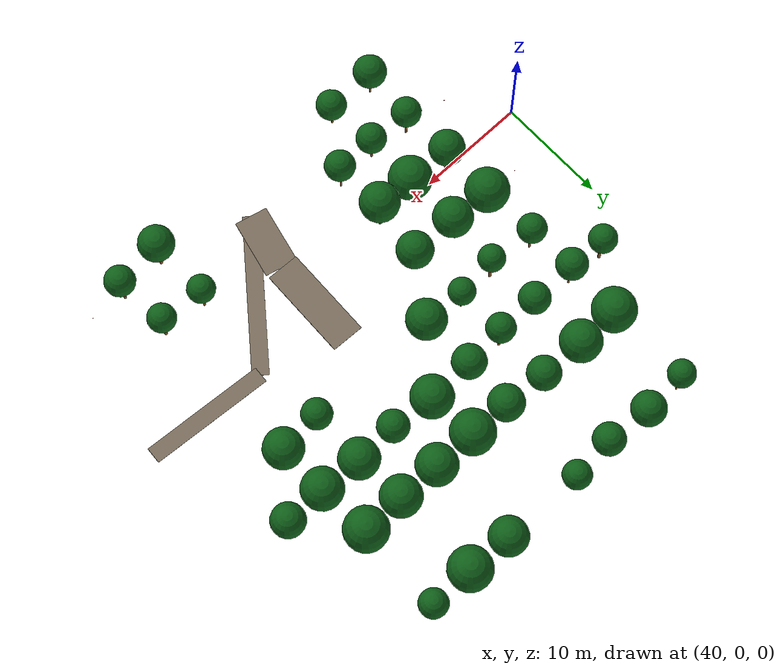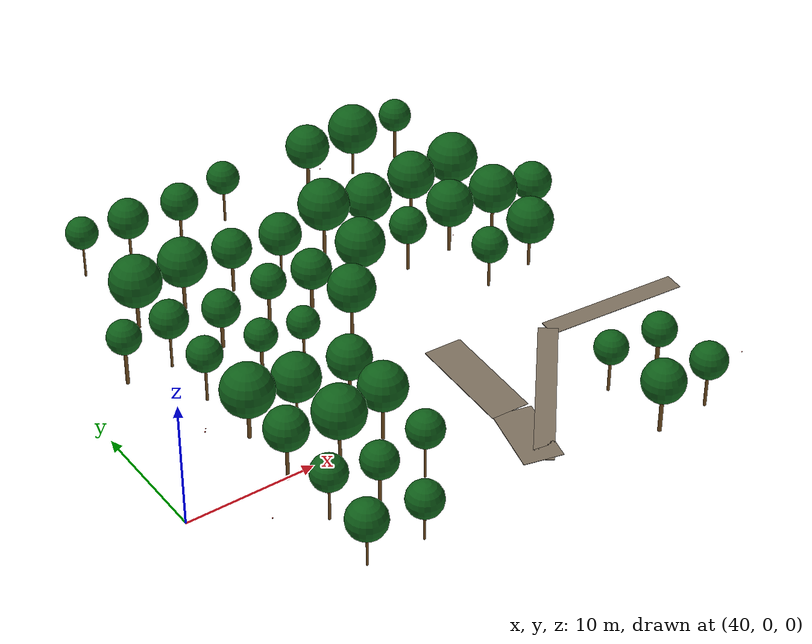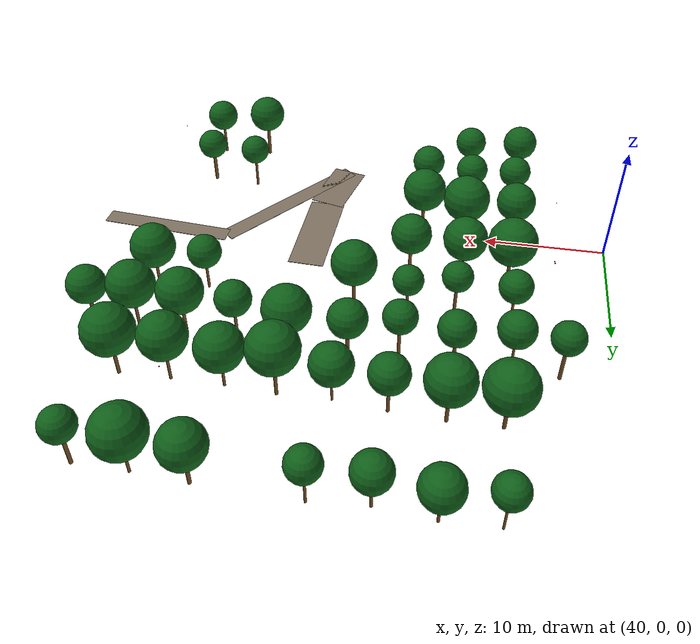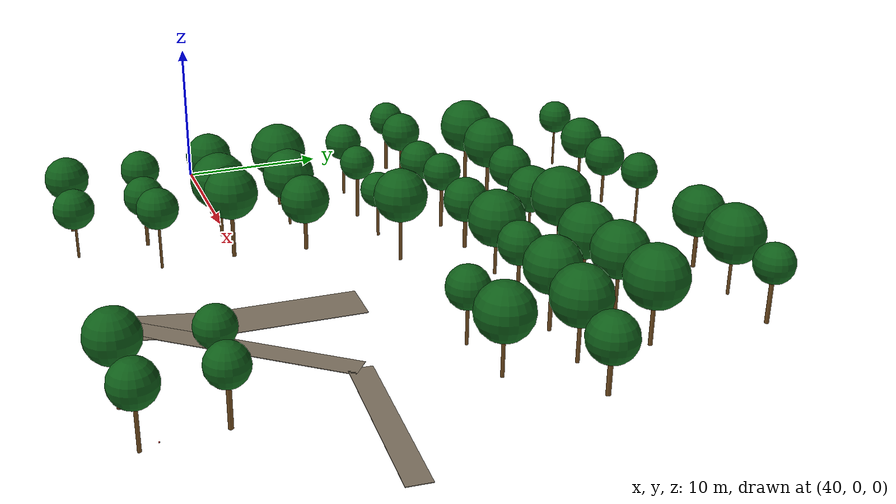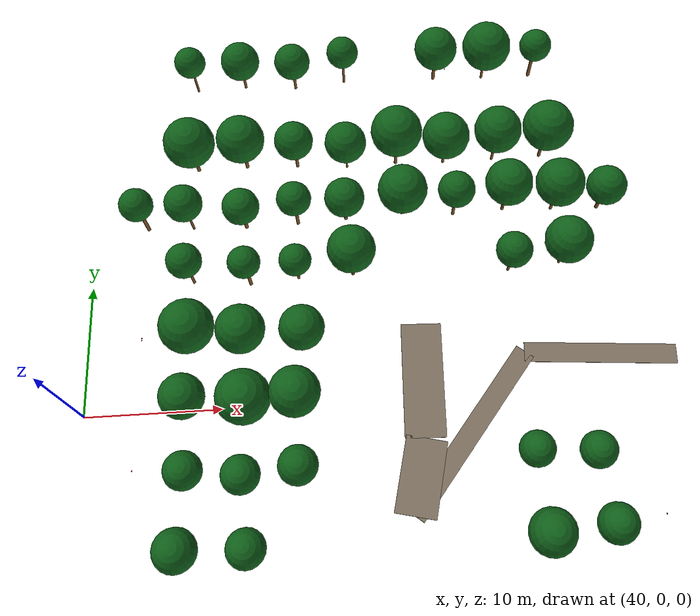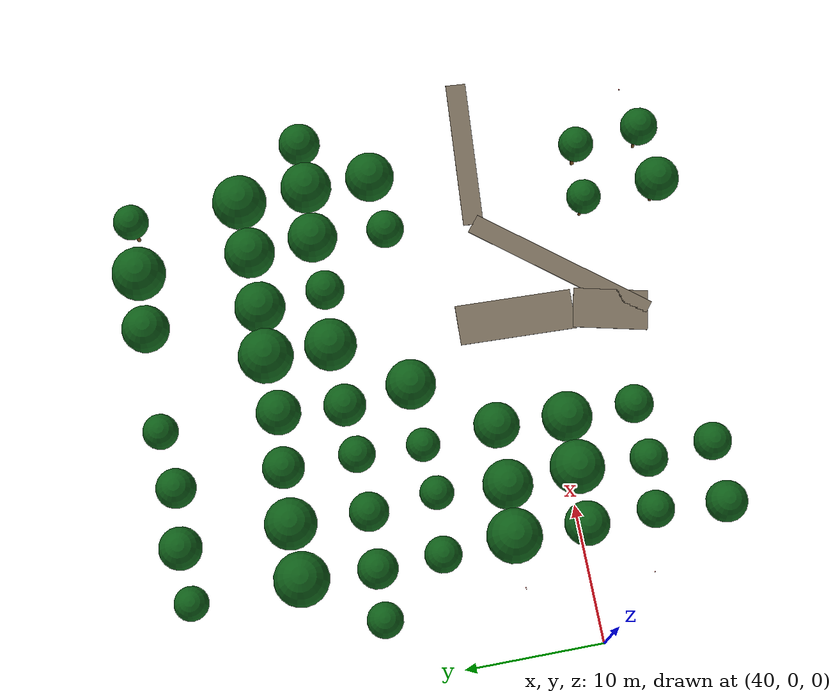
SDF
<sdf version="1.9">
 <world name="cheongsong_orchard">
  <model name="road_12">
   <static>true</static>
   <pose>63.9 -5.7 0.02 0 0 1.3389</pose>
   <link name="link">
    <collision name="collision">
     <geometry><box><size>5.5 3.0 0.04</size></box></geometry>
     <surface><friction><ode><mu>0.9</mu><mu2>0.9</mu2></ode></friction></surface>
    </collision>
    <visual name="visual">
     <geometry><box><size>5.5 3.0 0.04</size></box></geometry>
     <material><ambient>0.4 0.35 0.28 1</ambient><diffuse>0.5 0.45 0.38 1</diffuse></material>
    </visual>
   </link>
  </model>
  <model name="road_13">
   <static>true</static>
   <pose>64.6 1.3 0.02 0 0 1.5345</pose>
   <link name="link">
    <collision name="collision">
     <geometry><box><size>8.6 3.0 0.04</size></box></geometry>
     <surface><friction><ode><mu>0.9</mu><mu2>0.9</mu2></ode></friction></surface>
    </collision>
    <visual name="visual">
     <geometry><box><size>8.6 3.0 0.04</size></box></geometry>
     <material><ambient>0.4 0.35 0.28 1</ambient><diffuse>0.5 0.45 0.38 1</diffuse></material>
    </visual>
   </link>
  </model>
  <model name="road_30">
   <static>true</static>
   <pose>67.8 -2.7 0.02 0 0 0.8952</pose>
   <link name="link">
    <collision name="collision">
     <geometry><box><size>14.5 1.5 0.04</size></box></geometry>
     <surface><friction><ode><mu>0.9</mu><mu2>0.9</mu2></ode></friction></surface>
    </collision>
    <visual name="visual">
     <geometry><box><size>14.5 1.5 0.04</size></box></geometry>
     <material><ambient>0.4 0.35 0.28 1</ambient><diffuse>0.5 0.45 0.38 1</diffuse></material>
    </visual>
   </link>
  </model>
  <model name="road_31">
   <static>true</static>
   <pose>77.9 2.5 0.02 0 0 -0.0748</pose>
   <link name="link">
    <collision name="collision">
     <geometry><box><size>11.3 1.5 0.04</size></box></geometry>
     <surface><friction><ode><mu>0.9</mu><mu2>0.9</mu2></ode></friction></surface>
    </collision>
    <visual name="visual">
     <geometry><box><size>11.3 1.5 0.04</size></box></geometry>
     <material><ambient>0.4 0.35 0.28 1</ambient><diffuse>0.5 0.45 0.38 1</diffuse></material>
    </visual>
   </link>
  </model>
  <model name="apple_tree_1156">
   <static>true</static>
   <pose>47.65 -10.00 0 0 0 0</pose>
   <link name="link">
    <collision name="trunk_col">
     <pose>0 0 1.25 0 0 0</pose>
     <geometry><cylinder><radius>0.084</radius><length>2.50</length></cylinder></geometry>
    </collision>
    <visual name="trunk_vis">
     <pose>0 0 1.25 0 0 0</pose>
     <geometry><cylinder><radius>0.084</radius><length>2.50</length></cylinder></geometry>
     <material><ambient>0.35 0.22 0.08 1</ambient><diffuse>0.45 0.30 0.12 1</diffuse></material>
    </visual>
    <collision name="canopy_col">
     <pose>0 0 3.97 0 0 0</pose>
     <geometry><sphere><radius>1.48</radius></sphere></geometry>
    </collision>
    <visual name="canopy_vis">
     <pose>0 0 3.97 0 0 0</pose>
     <geometry><sphere><radius>1.48</radius></sphere></geometry>
     <material><ambient>0.04 0.28 0.06 1</ambient><diffuse>0.06 0.38 0.10 1</diffuse></material>
    </visual>
   </link>
  </model>
  <model name="apple_tree_1157">
   <static>true</static>
   <pose>52.10 -10.11 0 0 0 0</pose>
   <link name="link">
    <collision name="trunk_col">
     <pose>0 0 1.07 0 0 0</pose>
     <geometry><cylinder><radius>0.085</radius><length>2.15</length></cylinder></geometry>
    </collision>
    <visual name="trunk_vis">
     <pose>0 0 1.07 0 0 0</pose>
     <geometry><cylinder><radius>0.085</radius><length>2.15</length></cylinder></geometry>
     <material><ambient>0.35 0.22 0.08 1</ambient><diffuse>0.45 0.30 0.12 1</diffuse></material>
    </visual>
    <collision name="canopy_col">
     <pose>0 0 3.50 0 0 0</pose>
     <geometry><sphere><radius>1.35</radius></sphere></geometry>
    </collision>
    <visual name="canopy_vis">
     <pose>0 0 3.50 0 0 0</pose>
     <geometry><sphere><radius>1.35</radius></sphere></geometry>
     <material><ambient>0.04 0.28 0.06 1</ambient><diffuse>0.06 0.38 0.10 1</diffuse></material>
    </visual>
   </link>
  </model>
  <model name="apple_tree_1158">
   <static>true</static>
   <pose>71.71 -10.43 0 0 0 0</pose>
   <link name="link">
    <collision name="trunk_col">
     <pose>0 0 1.40 0 0 0</pose>
     <geometry><cylinder><radius>0.144</radius><length>2.80</length></cylinder></geometry>
    </collision>
    <visual name="trunk_vis">
     <pose>0 0 1.40 0 0 0</pose>
     <geometry><cylinder><radius>0.144</radius><length>2.80</length></cylinder></geometry>
     <material><ambient>0.35 0.22 0.08 1</ambient><diffuse>0.45 0.30 0.12 1</diffuse></material>
    </visual>
    <collision name="canopy_col">
     <pose>0 0 4.40 0 0 0</pose>
     <geometry><sphere><radius>1.60</radius></sphere></geometry>
    </collision>
    <visual name="canopy_vis">
     <pose>0 0 4.40 0 0 0</pose>
     <geometry><sphere><radius>1.60</radius></sphere></geometry>
     <material><ambient>0.04 0.28 0.06 1</ambient><diffuse>0.06 0.38 0.10 1</diffuse></material>
    </visual>
   </link>
  </model>
  <model name="apple_tree_1159">
   <static>true</static>
   <pose>76.06 -10.11 0 0 0 0</pose>
   <link name="link">
    <collision name="trunk_col">
     <pose>0 0 1.31 0 0 0</pose>
     <geometry><cylinder><radius>0.113</radius><length>2.63</length></cylinder></geometry>
    </collision>
    <visual name="trunk_vis">
     <pose>0 0 1.31 0 0 0</pose>
     <geometry><cylinder><radius>0.113</radius><length>2.63</length></cylinder></geometry>
     <material><ambient>0.35 0.22 0.08 1</ambient><diffuse>0.45 0.30 0.12 1</diffuse></material>
    </visual>
    <collision name="canopy_col">
     <pose>0 0 4.00 0 0 0</pose>
     <geometry><sphere><radius>1.37</radius></sphere></geometry>
    </collision>
    <visual name="canopy_vis">
     <pose>0 0 4.00 0 0 0</pose>
     <geometry><sphere><radius>1.37</radius></sphere></geometry>
     <material><ambient>0.04 0.28 0.06 1</ambient><diffuse>0.06 0.38 0.10 1</diffuse></material>
    </visual>
   </link>
  </model>
  <model name="apple_tree_1211">
   <static>true</static>
   <pose>48.04 -5.01 0 0 0 0</pose>
   <link name="link">
    <collision name="trunk_col">
     <pose>0 0 1.38 0 0 0</pose>
     <geometry><cylinder><radius>0.092</radius><length>2.76</length></cylinder></geometry>
    </collision>
    <visual name="trunk_vis">
     <pose>0 0 1.38 0 0 0</pose>
     <geometry><cylinder><radius>0.092</radius><length>2.76</length></cylinder></geometry>
     <material><ambient>0.35 0.22 0.08 1</ambient><diffuse>0.45 0.30 0.12 1</diffuse></material>
    </visual>
    <collision name="canopy_col">
     <pose>0 0 4.09 0 0 0</pose>
     <geometry><sphere><radius>1.33</radius></sphere></geometry>
    </collision>
    <visual name="canopy_vis">
     <pose>0 0 4.09 0 0 0</pose>
     <geometry><sphere><radius>1.33</radius></sphere></geometry>
     <material><ambient>0.04 0.28 0.06 1</ambient><diffuse>0.06 0.38 0.10 1</diffuse></material>
    </visual>
   </link>
  </model>
  <model name="apple_tree_1212">
   <static>true</static>
   <pose>51.76 -5.42 0 0 0 0</pose>
   <link name="link">
    <collision name="trunk_col">
     <pose>0 0 1.13 0 0 0</pose>
     <geometry><cylinder><radius>0.119</radius><length>2.27</length></cylinder></geometry>
    </collision>
    <visual name="trunk_vis">
     <pose>0 0 1.13 0 0 0</pose>
     <geometry><cylinder><radius>0.119</radius><length>2.27</length></cylinder></geometry>
     <material><ambient>0.35 0.22 0.08 1</ambient><diffuse>0.45 0.30 0.12 1</diffuse></material>
    </visual>
    <collision name="canopy_col">
     <pose>0 0 3.62 0 0 0</pose>
     <geometry><sphere><radius>1.35</radius></sphere></geometry>
    </collision>
    <visual name="canopy_vis">
     <pose>0 0 3.62 0 0 0</pose>
     <geometry><sphere><radius>1.35</radius></sphere></geometry>
     <material><ambient>0.04 0.28 0.06 1</ambient><diffuse>0.06 0.38 0.10 1</diffuse></material>
    </visual>
   </link>
  </model>
  <model name="apple_tree_1213">
   <static>true</static>
   <pose>55.63 -5.16 0 0 0 0</pose>
   <link name="link">
    <collision name="trunk_col">
     <pose>0 0 1.43 0 0 0</pose>
     <geometry><cylinder><radius>0.088</radius><length>2.87</length></cylinder></geometry>
    </collision>
    <visual name="trunk_vis">
     <pose>0 0 1.43 0 0 0</pose>
     <geometry><cylinder><radius>0.088</radius><length>2.87</length></cylinder></geometry>
     <material><ambient>0.35 0.22 0.08 1</ambient><diffuse>0.45 0.30 0.12 1</diffuse></material>
    </visual>
    <collision name="canopy_col">
     <pose>0 0 4.24 0 0 0</pose>
     <geometry><sphere><radius>1.37</radius></sphere></geometry>
    </collision>
    <visual name="canopy_vis">
     <pose>0 0 4.24 0 0 0</pose>
     <geometry><sphere><radius>1.37</radius></sphere></geometry>
     <material><ambient>0.04 0.28 0.06 1</ambient><diffuse>0.06 0.38 0.10 1</diffuse></material>
    </visual>
   </link>
  </model>
  <model name="apple_tree_1214">
   <static>true</static>
   <pose>71.55 -5.00 0 0 0 0</pose>
   <link name="link">
    <collision name="trunk_col">
     <pose>0 0 1.29 0 0 0</pose>
     <geometry><cylinder><radius>0.106</radius><length>2.58</length></cylinder></geometry>
    </collision>
    <visual name="trunk_vis">
     <pose>0 0 1.29 0 0 0</pose>
     <geometry><cylinder><radius>0.106</radius><length>2.58</length></cylinder></geometry>
     <material><ambient>0.35 0.22 0.08 1</ambient><diffuse>0.45 0.30 0.12 1</diffuse></material>
    </visual>
    <collision name="canopy_col">
     <pose>0 0 3.84 0 0 0</pose>
     <geometry><sphere><radius>1.25</radius></sphere></geometry>
    </collision>
    <visual name="canopy_vis">
     <pose>0 0 3.84 0 0 0</pose>
     <geometry><sphere><radius>1.25</radius></sphere></geometry>
     <material><ambient>0.04 0.28 0.06 1</ambient><diffuse>0.06 0.38 0.10 1</diffuse></material>
    </visual>
   </link>
  </model>
  <model name="apple_tree_1215">
   <static>true</static>
   <pose>75.64 -5.31 0 0 0 0</pose>
   <link name="link">
    <collision name="trunk_col">
     <pose>0 0 1.27 0 0 0</pose>
     <geometry><cylinder><radius>0.149</radius><length>2.53</length></cylinder></geometry>
    </collision>
    <visual name="trunk_vis">
     <pose>0 0 1.27 0 0 0</pose>
     <geometry><cylinder><radius>0.149</radius><length>2.53</length></cylinder></geometry>
     <material><ambient>0.35 0.22 0.08 1</ambient><diffuse>0.45 0.30 0.12 1</diffuse></material>
    </visual>
    <collision name="canopy_col">
     <pose>0 0 3.82 0 0 0</pose>
     <geometry><sphere><radius>1.28</radius></sphere></geometry>
    </collision>
    <visual name="canopy_vis">
     <pose>0 0 3.82 0 0 0</pose>
     <geometry><sphere><radius>1.28</radius></sphere></geometry>
     <material><ambient>0.04 0.28 0.06 1</ambient><diffuse>0.06 0.38 0.10 1</diffuse></material>
    </visual>
   </link>
  </model>
  <model name="apple_tree_1267">
   <static>true</static>
   <pose>47.91 -0.09 0 0 0 0</pose>
   <link name="link">
    <collision name="trunk_col">
     <pose>0 0 1.42 0 0 0</pose>
     <geometry><cylinder><radius>0.124</radius><length>2.85</length></cylinder></geometry>
    </collision>
    <visual name="trunk_vis">
     <pose>0 0 1.42 0 0 0</pose>
     <geometry><cylinder><radius>0.124</radius><length>2.85</length></cylinder></geometry>
     <material><ambient>0.35 0.22 0.08 1</ambient><diffuse>0.45 0.30 0.12 1</diffuse></material>
    </visual>
    <collision name="canopy_col">
     <pose>0 0 4.44 0 0 0</pose>
     <geometry><sphere><radius>1.59</radius></sphere></geometry>
    </collision>
    <visual name="canopy_vis">
     <pose>0 0 4.44 0 0 0</pose>
     <geometry><sphere><radius>1.59</radius></sphere></geometry>
     <material><ambient>0.04 0.28 0.06 1</ambient><diffuse>0.06 0.38 0.10 1</diffuse></material>
    </visual>
   </link>
  </model>
  <model name="apple_tree_1268">
   <static>true</static>
   <pose>51.99 -0.29 0 0 0 0</pose>
   <link name="link">
    <collision name="trunk_col">
     <pose>0 0 1.08 0 0 0</pose>
     <geometry><cylinder><radius>0.120</radius><length>2.17</length></cylinder></geometry>
    </collision>
    <visual name="trunk_vis">
     <pose>0 0 1.08 0 0 0</pose>
     <geometry><cylinder><radius>0.120</radius><length>2.17</length></cylinder></geometry>
     <material><ambient>0.35 0.22 0.08 1</ambient><diffuse>0.45 0.30 0.12 1</diffuse></material>
    </visual>
    <collision name="canopy_col">
     <pose>0 0 4.11 0 0 0</pose>
     <geometry><sphere><radius>1.94</radius></sphere></geometry>
    </collision>
    <visual name="canopy_vis">
     <pose>0 0 4.11 0 0 0</pose>
     <geometry><sphere><radius>1.94</radius></sphere></geometry>
     <material><ambient>0.04 0.28 0.06 1</ambient><diffuse>0.06 0.38 0.10 1</diffuse></material>
    </visual>
   </link>
  </model>
  <model name="apple_tree_1269">
   <static>true</static>
   <pose>55.55 -0.28 0 0 0 0</pose>
   <link name="link">
    <collision name="trunk_col">
     <pose>0 0 1.42 0 0 0</pose>
     <geometry><cylinder><radius>0.132</radius><length>2.84</length></cylinder></geometry>
    </collision>
    <visual name="trunk_vis">
     <pose>0 0 1.42 0 0 0</pose>
     <geometry><cylinder><radius>0.132</radius><length>2.84</length></cylinder></geometry>
     <material><ambient>0.35 0.22 0.08 1</ambient><diffuse>0.45 0.30 0.12 1</diffuse></material>
    </visual>
    <collision name="canopy_col">
     <pose>0 0 4.62 0 0 0</pose>
     <geometry><sphere><radius>1.78</radius></sphere></geometry>
    </collision>
    <visual name="canopy_vis">
     <pose>0 0 4.62 0 0 0</pose>
     <geometry><sphere><radius>1.78</radius></sphere></geometry>
     <material><ambient>0.04 0.28 0.06 1</ambient><diffuse>0.06 0.38 0.10 1</diffuse></material>
    </visual>
   </link>
  </model>
  <model name="apple_tree_1311">
   <static>true</static>
   <pose>48.04 5.00 0 0 0 0</pose>
   <link name="link">
    <collision name="trunk_col">
     <pose>0 0 1.12 0 0 0</pose>
     <geometry><cylinder><radius>0.140</radius><length>2.25</length></cylinder></geometry>
    </collision>
    <visual name="trunk_vis">
     <pose>0 0 1.12 0 0 0</pose>
     <geometry><cylinder><radius>0.140</radius><length>2.25</length></cylinder></geometry>
     <material><ambient>0.35 0.22 0.08 1</ambient><diffuse>0.45 0.30 0.12 1</diffuse></material>
    </visual>
    <collision name="canopy_col">
     <pose>0 0 4.21 0 0 0</pose>
     <geometry><sphere><radius>1.96</radius></sphere></geometry>
    </collision>
    <visual name="canopy_vis">
     <pose>0 0 4.21 0 0 0</pose>
     <geometry><sphere><radius>1.96</radius></sphere></geometry>
     <material><ambient>0.04 0.28 0.06 1</ambient><diffuse>0.06 0.38 0.10 1</diffuse></material>
    </visual>
   </link>
  </model>
  <model name="apple_tree_1312">
   <static>true</static>
   <pose>51.75 4.70 0 0 0 0</pose>
   <link name="link">
    <collision name="trunk_col">
     <pose>0 0 1.02 0 0 0</pose>
     <geometry><cylinder><radius>0.086</radius><length>2.04</length></cylinder></geometry>
    </collision>
    <visual name="trunk_vis">
     <pose>0 0 1.02 0 0 0</pose>
     <geometry><cylinder><radius>0.086</radius><length>2.04</length></cylinder></geometry>
     <material><ambient>0.35 0.22 0.08 1</ambient><diffuse>0.45 0.30 0.12 1</diffuse></material>
    </visual>
    <collision name="canopy_col">
     <pose>0 0 3.82 0 0 0</pose>
     <geometry><sphere><radius>1.78</radius></sphere></geometry>
    </collision>
    <visual name="canopy_vis">
     <pose>0 0 3.82 0 0 0</pose>
     <geometry><sphere><radius>1.78</radius></sphere></geometry>
     <material><ambient>0.04 0.28 0.06 1</ambient><diffuse>0.06 0.38 0.10 1</diffuse></material>
    </visual>
   </link>
  </model>
  <model name="apple_tree_1313">
   <static>true</static>
   <pose>56.08 4.61 0 0 0 0</pose>
   <link name="link">
    <collision name="trunk_col">
     <pose>0 0 1.00 0 0 0</pose>
     <geometry><cylinder><radius>0.132</radius><length>2.01</length></cylinder></geometry>
    </collision>
    <visual name="trunk_vis">
     <pose>0 0 1.00 0 0 0</pose>
     <geometry><cylinder><radius>0.132</radius><length>2.01</length></cylinder></geometry>
     <material><ambient>0.35 0.22 0.08 1</ambient><diffuse>0.45 0.30 0.12 1</diffuse></material>
    </visual>
    <collision name="canopy_col">
     <pose>0 0 3.65 0 0 0</pose>
     <geometry><sphere><radius>1.64</radius></sphere></geometry>
    </collision>
    <visual name="canopy_vis">
     <pose>0 0 3.65 0 0 0</pose>
     <geometry><sphere><radius>1.64</radius></sphere></geometry>
     <material><ambient>0.04 0.28 0.06 1</ambient><diffuse>0.06 0.38 0.10 1</diffuse></material>
    </visual>
   </link>
  </model>
  <model name="apple_tree_1353">
   <static>true</static>
   <pose>47.71 10.08 0 0 0 0</pose>
   <link name="link">
    <collision name="trunk_col">
     <pose>0 0 1.41 0 0 0</pose>
     <geometry><cylinder><radius>0.098</radius><length>2.81</length></cylinder></geometry>
    </collision>
    <visual name="trunk_vis">
     <pose>0 0 1.41 0 0 0</pose>
     <geometry><cylinder><radius>0.098</radius><length>2.81</length></cylinder></geometry>
     <material><ambient>0.35 0.22 0.08 1</ambient><diffuse>0.45 0.30 0.12 1</diffuse></material>
    </visual>
    <collision name="canopy_col">
     <pose>0 0 4.12 0 0 0</pose>
     <geometry><sphere><radius>1.31</radius></sphere></geometry>
    </collision>
    <visual name="canopy_vis">
     <pose>0 0 4.12 0 0 0</pose>
     <geometry><sphere><radius>1.31</radius></sphere></geometry>
     <material><ambient>0.04 0.28 0.06 1</ambient><diffuse>0.06 0.38 0.10 1</diffuse></material>
    </visual>
   </link>
  </model>
  <model name="apple_tree_1354">
   <static>true</static>
   <pose>52.05 9.69 0 0 0 0</pose>
   <link name="link">
    <collision name="trunk_col">
     <pose>0 0 1.46 0 0 0</pose>
     <geometry><cylinder><radius>0.124</radius><length>2.91</length></cylinder></geometry>
    </collision>
    <visual name="trunk_vis">
     <pose>0 0 1.46 0 0 0</pose>
     <geometry><cylinder><radius>0.124</radius><length>2.91</length></cylinder></geometry>
     <material><ambient>0.35 0.22 0.08 1</ambient><diffuse>0.45 0.30 0.12 1</diffuse></material>
    </visual>
    <collision name="canopy_col">
     <pose>0 0 4.12 0 0 0</pose>
     <geometry><sphere><radius>1.21</radius></sphere></geometry>
    </collision>
    <visual name="canopy_vis">
     <pose>0 0 4.12 0 0 0</pose>
     <geometry><sphere><radius>1.21</radius></sphere></geometry>
     <material><ambient>0.04 0.28 0.06 1</ambient><diffuse>0.06 0.38 0.10 1</diffuse></material>
    </visual>
   </link>
  </model>
  <model name="apple_tree_1355">
   <static>true</static>
   <pose>55.72 9.95 0 0 0 0</pose>
   <link name="link">
    <collision name="trunk_col">
     <pose>0 0 1.11 0 0 0</pose>
     <geometry><cylinder><radius>0.098</radius><length>2.22</length></cylinder></geometry>
    </collision>
    <visual name="trunk_vis">
     <pose>0 0 1.11 0 0 0</pose>
     <geometry><cylinder><radius>0.098</radius><length>2.22</length></cylinder></geometry>
     <material><ambient>0.35 0.22 0.08 1</ambient><diffuse>0.45 0.30 0.12 1</diffuse></material>
    </visual>
    <collision name="canopy_col">
     <pose>0 0 3.44 0 0 0</pose>
     <geometry><sphere><radius>1.21</radius></sphere></geometry>
    </collision>
    <visual name="canopy_vis">
     <pose>0 0 3.44 0 0 0</pose>
     <geometry><sphere><radius>1.21</radius></sphere></geometry>
     <material><ambient>0.04 0.28 0.06 1</ambient><diffuse>0.06 0.38 0.10 1</diffuse></material>
    </visual>
   </link>
  </model>
  <model name="apple_tree_1356">
   <static>true</static>
   <pose>59.90 10.03 0 0 0 0</pose>
   <link name="link">
    <collision name="trunk_col">
     <pose>0 0 1.43 0 0 0</pose>
     <geometry><cylinder><radius>0.121</radius><length>2.87</length></cylinder></geometry>
    </collision>
    <visual name="trunk_vis">
     <pose>0 0 1.43 0 0 0</pose>
     <geometry><cylinder><radius>0.121</radius><length>2.87</length></cylinder></geometry>
     <material><ambient>0.35 0.22 0.08 1</ambient><diffuse>0.45 0.30 0.12 1</diffuse></material>
    </visual>
    <collision name="canopy_col">
     <pose>0 0 4.64 0 0 0</pose>
     <geometry><sphere><radius>1.78</radius></sphere></geometry>
    </collision>
    <visual name="canopy_vis">
     <pose>0 0 4.64 0 0 0</pose>
     <geometry><sphere><radius>1.78</radius></sphere></geometry>
     <material><ambient>0.04 0.28 0.06 1</ambient><diffuse>0.06 0.38 0.10 1</diffuse></material>
    </visual>
   </link>
  </model>
  <model name="apple_tree_1357">
   <static>true</static>
   <pose>71.87 9.63 0 0 0 0</pose>
   <link name="link">
    <collision name="trunk_col">
     <pose>0 0 1.19 0 0 0</pose>
     <geometry><cylinder><radius>0.103</radius><length>2.38</length></cylinder></geometry>
    </collision>
    <visual name="trunk_vis">
     <pose>0 0 1.19 0 0 0</pose>
     <geometry><cylinder><radius>0.103</radius><length>2.38</length></cylinder></geometry>
     <material><ambient>0.35 0.22 0.08 1</ambient><diffuse>0.45 0.30 0.12 1</diffuse></material>
    </visual>
    <collision name="canopy_col">
     <pose>0 0 3.74 0 0 0</pose>
     <geometry><sphere><radius>1.36</radius></sphere></geometry>
    </collision>
    <visual name="canopy_vis">
     <pose>0 0 3.74 0 0 0</pose>
     <geometry><sphere><radius>1.36</radius></sphere></geometry>
     <material><ambient>0.04 0.28 0.06 1</ambient><diffuse>0.06 0.38 0.10 1</diffuse></material>
    </visual>
   </link>
  </model>
  <model name="apple_tree_1358">
   <static>true</static>
   <pose>75.89 10.03 0 0 0 0</pose>
   <link name="link">
    <collision name="trunk_col">
     <pose>0 0 1.17 0 0 0</pose>
     <geometry><cylinder><radius>0.111</radius><length>2.34</length></cylinder></geometry>
    </collision>
    <visual name="trunk_vis">
     <pose>0 0 1.17 0 0 0</pose>
     <geometry><cylinder><radius>0.111</radius><length>2.34</length></cylinder></geometry>
     <material><ambient>0.35 0.22 0.08 1</ambient><diffuse>0.45 0.30 0.12 1</diffuse></material>
    </visual>
    <collision name="canopy_col">
     <pose>0 0 4.12 0 0 0</pose>
     <geometry><sphere><radius>1.78</radius></sphere></geometry>
    </collision>
    <visual name="canopy_vis">
     <pose>0 0 4.12 0 0 0</pose>
     <geometry><sphere><radius>1.78</radius></sphere></geometry>
     <material><ambient>0.04 0.28 0.06 1</ambient><diffuse>0.06 0.38 0.10 1</diffuse></material>
    </visual>
   </link>
  </model>
  <model name="apple_tree_1403">
   <static>true</static>
   <pose>44.03 14.84 0 0 0 0</pose>
   <link name="link">
    <collision name="trunk_col">
     <pose>0 0 1.45 0 0 0</pose>
     <geometry><cylinder><radius>0.135</radius><length>2.89</length></cylinder></geometry>
    </collision>
    <visual name="trunk_vis">
     <pose>0 0 1.45 0 0 0</pose>
     <geometry><cylinder><radius>0.135</radius><length>2.89</length></cylinder></geometry>
     <material><ambient>0.35 0.22 0.08 1</ambient><diffuse>0.45 0.30 0.12 1</diffuse></material>
    </visual>
    <collision name="canopy_col">
     <pose>0 0 4.16 0 0 0</pose>
     <geometry><sphere><radius>1.27</radius></sphere></geometry>
    </collision>
    <visual name="canopy_vis">
     <pose>0 0 4.16 0 0 0</pose>
     <geometry><sphere><radius>1.27</radius></sphere></geometry>
     <material><ambient>0.04 0.28 0.06 1</ambient><diffuse>0.06 0.38 0.10 1</diffuse></material>
    </visual>
   </link>
  </model>
  <model name="apple_tree_1404">
   <static>true</static>
   <pose>47.57 14.70 0 0 0 0</pose>
   <link name="link">
    <collision name="trunk_col">
     <pose>0 0 1.43 0 0 0</pose>
     <geometry><cylinder><radius>0.091</radius><length>2.86</length></cylinder></geometry>
    </collision>
    <visual name="trunk_vis">
     <pose>0 0 1.43 0 0 0</pose>
     <geometry><cylinder><radius>0.091</radius><length>2.86</length></cylinder></geometry>
     <material><ambient>0.35 0.22 0.08 1</ambient><diffuse>0.45 0.30 0.12 1</diffuse></material>
    </visual>
    <collision name="canopy_col">
     <pose>0 0 4.28 0 0 0</pose>
     <geometry><sphere><radius>1.42</radius></sphere></geometry>
    </collision>
    <visual name="canopy_vis">
     <pose>0 0 4.28 0 0 0</pose>
     <geometry><sphere><radius>1.42</radius></sphere></geometry>
     <material><ambient>0.04 0.28 0.06 1</ambient><diffuse>0.06 0.38 0.10 1</diffuse></material>
    </visual>
   </link>
  </model>
  <model name="apple_tree_1405">
   <static>true</static>
   <pose>51.73 14.56 0 0 0 0</pose>
   <link name="link">
    <collision name="trunk_col">
     <pose>0 0 1.06 0 0 0</pose>
     <geometry><cylinder><radius>0.134</radius><length>2.12</length></cylinder></geometry>
    </collision>
    <visual name="trunk_vis">
     <pose>0 0 1.06 0 0 0</pose>
     <geometry><cylinder><radius>0.134</radius><length>2.12</length></cylinder></geometry>
     <material><ambient>0.35 0.22 0.08 1</ambient><diffuse>0.45 0.30 0.12 1</diffuse></material>
    </visual>
    <collision name="canopy_col">
     <pose>0 0 3.53 0 0 0</pose>
     <geometry><sphere><radius>1.41</radius></sphere></geometry>
    </collision>
    <visual name="canopy_vis">
     <pose>0 0 3.53 0 0 0</pose>
     <geometry><sphere><radius>1.41</radius></sphere></geometry>
     <material><ambient>0.04 0.28 0.06 1</ambient><diffuse>0.06 0.38 0.10 1</diffuse></material>
    </visual>
   </link>
  </model>
  <model name="apple_tree_1406">
   <static>true</static>
   <pose>55.79 14.66 0 0 0 0</pose>
   <link name="link">
    <collision name="trunk_col">
     <pose>0 0 1.40 0 0 0</pose>
     <geometry><cylinder><radius>0.126</radius><length>2.80</length></cylinder></geometry>
    </collision>
    <visual name="trunk_vis">
     <pose>0 0 1.40 0 0 0</pose>
     <geometry><cylinder><radius>0.126</radius><length>2.80</length></cylinder></geometry>
     <material><ambient>0.35 0.22 0.08 1</ambient><diffuse>0.45 0.30 0.12 1</diffuse></material>
    </visual>
    <collision name="canopy_col">
     <pose>0 0 4.12 0 0 0</pose>
     <geometry><sphere><radius>1.31</radius></sphere></geometry>
    </collision>
    <visual name="canopy_vis">
     <pose>0 0 4.12 0 0 0</pose>
     <geometry><sphere><radius>1.31</radius></sphere></geometry>
     <material><ambient>0.04 0.28 0.06 1</ambient><diffuse>0.06 0.38 0.10 1</diffuse></material>
    </visual>
   </link>
  </model>
  <model name="apple_tree_1407">
   <static>true</static>
   <pose>59.58 14.85 0 0 0 0</pose>
   <link name="link">
    <collision name="trunk_col">
     <pose>0 0 0.99 0 0 0</pose>
     <geometry><cylinder><radius>0.140</radius><length>1.99</length></cylinder></geometry>
    </collision>
    <visual name="trunk_vis">
     <pose>0 0 0.99 0 0 0</pose>
     <geometry><cylinder><radius>0.140</radius><length>1.99</length></cylinder></geometry>
     <material><ambient>0.35 0.22 0.08 1</ambient><diffuse>0.45 0.30 0.12 1</diffuse></material>
    </visual>
    <collision name="canopy_col">
     <pose>0 0 3.51 0 0 0</pose>
     <geometry><sphere><radius>1.52</radius></sphere></geometry>
    </collision>
    <visual name="canopy_vis">
     <pose>0 0 3.51 0 0 0</pose>
     <geometry><sphere><radius>1.52</radius></sphere></geometry>
     <material><ambient>0.04 0.28 0.06 1</ambient><diffuse>0.06 0.38 0.10 1</diffuse></material>
    </visual>
   </link>
  </model>
  <model name="apple_tree_1408">
   <static>true</static>
   <pose>64.02 15.06 0 0 0 0</pose>
   <link name="link">
    <collision name="trunk_col">
     <pose>0 0 1.04 0 0 0</pose>
     <geometry><cylinder><radius>0.106</radius><length>2.08</length></cylinder></geometry>
    </collision>
    <visual name="trunk_vis">
     <pose>0 0 1.04 0 0 0</pose>
     <geometry><cylinder><radius>0.106</radius><length>2.08</length></cylinder></geometry>
     <material><ambient>0.35 0.22 0.08 1</ambient><diffuse>0.45 0.30 0.12 1</diffuse></material>
    </visual>
    <collision name="canopy_col">
     <pose>0 0 3.95 0 0 0</pose>
     <geometry><sphere><radius>1.88</radius></sphere></geometry>
    </collision>
    <visual name="canopy_vis">
     <pose>0 0 3.95 0 0 0</pose>
     <geometry><sphere><radius>1.88</radius></sphere></geometry>
     <material><ambient>0.04 0.28 0.06 1</ambient><diffuse>0.06 0.38 0.10 1</diffuse></material>
    </visual>
   </link>
  </model>
  <model name="apple_tree_1409">
   <static>true</static>
   <pose>68.08 14.73 0 0 0 0</pose>
   <link name="link">
    <collision name="trunk_col">
     <pose>0 0 1.31 0 0 0</pose>
     <geometry><cylinder><radius>0.115</radius><length>2.62</length></cylinder></geometry>
    </collision>
    <visual name="trunk_vis">
     <pose>0 0 1.31 0 0 0</pose>
     <geometry><cylinder><radius>0.115</radius><length>2.62</length></cylinder></geometry>
     <material><ambient>0.35 0.22 0.08 1</ambient><diffuse>0.45 0.30 0.12 1</diffuse></material>
    </visual>
    <collision name="canopy_col">
     <pose>0 0 4.03 0 0 0</pose>
     <geometry><sphere><radius>1.41</radius></sphere></geometry>
    </collision>
    <visual name="canopy_vis">
     <pose>0 0 4.03 0 0 0</pose>
     <geometry><sphere><radius>1.41</radius></sphere></geometry>
     <material><ambient>0.04 0.28 0.06 1</ambient><diffuse>0.06 0.38 0.10 1</diffuse></material>
    </visual>
   </link>
  </model>
  <model name="apple_tree_1410">
   <static>true</static>
   <pose>72.04 14.92 0 0 0 0</pose>
   <link name="link">
    <collision name="trunk_col">
     <pose>0 0 1.28 0 0 0</pose>
     <geometry><cylinder><radius>0.125</radius><length>2.56</length></cylinder></geometry>
    </collision>
    <visual name="trunk_vis">
     <pose>0 0 1.28 0 0 0</pose>
     <geometry><cylinder><radius>0.125</radius><length>2.56</length></cylinder></geometry>
     <material><ambient>0.35 0.22 0.08 1</ambient><diffuse>0.45 0.30 0.12 1</diffuse></material>
    </visual>
    <collision name="canopy_col">
     <pose>0 0 4.35 0 0 0</pose>
     <geometry><sphere><radius>1.79</radius></sphere></geometry>
    </collision>
    <visual name="canopy_vis">
     <pose>0 0 4.35 0 0 0</pose>
     <geometry><sphere><radius>1.79</radius></sphere></geometry>
     <material><ambient>0.04 0.28 0.06 1</ambient><diffuse>0.06 0.38 0.10 1</diffuse></material>
    </visual>
   </link>
  </model>
  <model name="apple_tree_1411">
   <static>true</static>
   <pose>75.91 14.72 0 0 0 0</pose>
   <link name="link">
    <collision name="trunk_col">
     <pose>0 0 1.20 0 0 0</pose>
     <geometry><cylinder><radius>0.117</radius><length>2.41</length></cylinder></geometry>
    </collision>
    <visual name="trunk_vis">
     <pose>0 0 1.20 0 0 0</pose>
     <geometry><cylinder><radius>0.117</radius><length>2.41</length></cylinder></geometry>
     <material><ambient>0.35 0.22 0.08 1</ambient><diffuse>0.45 0.30 0.12 1</diffuse></material>
    </visual>
    <collision name="canopy_col">
     <pose>0 0 4.26 0 0 0</pose>
     <geometry><sphere><radius>1.85</radius></sphere></geometry>
    </collision>
    <visual name="canopy_vis">
     <pose>0 0 4.26 0 0 0</pose>
     <geometry><sphere><radius>1.85</radius></sphere></geometry>
     <material><ambient>0.04 0.28 0.06 1</ambient><diffuse>0.06 0.38 0.10 1</diffuse></material>
    </visual>
   </link>
  </model>
  <model name="apple_tree_1412">
   <static>true</static>
   <pose>79.58 14.62 0 0 0 0</pose>
   <link name="link">
    <collision name="trunk_col">
     <pose>0 0 1.03 0 0 0</pose>
     <geometry><cylinder><radius>0.147</radius><length>2.06</length></cylinder></geometry>
    </collision>
    <visual name="trunk_vis">
     <pose>0 0 1.03 0 0 0</pose>
     <geometry><cylinder><radius>0.147</radius><length>2.06</length></cylinder></geometry>
     <material><ambient>0.35 0.22 0.08 1</ambient><diffuse>0.45 0.30 0.12 1</diffuse></material>
    </visual>
    <collision name="canopy_col">
     <pose>0 0 3.57 0 0 0</pose>
     <geometry><sphere><radius>1.52</radius></sphere></geometry>
    </collision>
    <visual name="canopy_vis">
     <pose>0 0 3.57 0 0 0</pose>
     <geometry><sphere><radius>1.52</radius></sphere></geometry>
     <material><ambient>0.04 0.28 0.06 1</ambient><diffuse>0.06 0.38 0.10 1</diffuse></material>
    </visual>
   </link>
  </model>
  <model name="apple_tree_1454">
   <static>true</static>
   <pose>47.86 19.97 0 0 0 0</pose>
   <link name="link">
    <collision name="trunk_col">
     <pose>0 0 1.13 0 0 0</pose>
     <geometry><cylinder><radius>0.136</radius><length>2.25</length></cylinder></geometry>
    </collision>
    <visual name="trunk_vis">
     <pose>0 0 1.13 0 0 0</pose>
     <geometry><cylinder><radius>0.136</radius><length>2.25</length></cylinder></geometry>
     <material><ambient>0.35 0.22 0.08 1</ambient><diffuse>0.45 0.30 0.12 1</diffuse></material>
    </visual>
    <collision name="canopy_col">
     <pose>0 0 4.22 0 0 0</pose>
     <geometry><sphere><radius>1.96</radius></sphere></geometry>
    </collision>
    <visual name="canopy_vis">
     <pose>0 0 4.22 0 0 0</pose>
     <geometry><sphere><radius>1.96</radius></sphere></geometry>
     <material><ambient>0.04 0.28 0.06 1</ambient><diffuse>0.06 0.38 0.10 1</diffuse></material>
    </visual>
   </link>
  </model>
  <model name="apple_tree_1455">
   <static>true</static>
   <pose>51.80 20.04 0 0 0 0</pose>
   <link name="link">
    <collision name="trunk_col">
     <pose>0 0 1.18 0 0 0</pose>
     <geometry><cylinder><radius>0.132</radius><length>2.36</length></cylinder></geometry>
    </collision>
    <visual name="trunk_vis">
     <pose>0 0 1.18 0 0 0</pose>
     <geometry><cylinder><radius>0.132</radius><length>2.36</length></cylinder></geometry>
     <material><ambient>0.35 0.22 0.08 1</ambient><diffuse>0.45 0.30 0.12 1</diffuse></material>
    </visual>
    <collision name="canopy_col">
     <pose>0 0 4.22 0 0 0</pose>
     <geometry><sphere><radius>1.85</radius></sphere></geometry>
    </collision>
    <visual name="canopy_vis">
     <pose>0 0 4.22 0 0 0</pose>
     <geometry><sphere><radius>1.85</radius></sphere></geometry>
     <material><ambient>0.04 0.28 0.06 1</ambient><diffuse>0.06 0.38 0.10 1</diffuse></material>
    </visual>
   </link>
  </model>
  <model name="apple_tree_1456">
   <static>true</static>
   <pose>55.88 19.87 0 0 0 0</pose>
   <link name="link">
    <collision name="trunk_col">
     <pose>0 0 1.18 0 0 0</pose>
     <geometry><cylinder><radius>0.120</radius><length>2.37</length></cylinder></geometry>
    </collision>
    <visual name="trunk_vis">
     <pose>0 0 1.18 0 0 0</pose>
     <geometry><cylinder><radius>0.120</radius><length>2.37</length></cylinder></geometry>
     <material><ambient>0.35 0.22 0.08 1</ambient><diffuse>0.45 0.30 0.12 1</diffuse></material>
    </visual>
    <collision name="canopy_col">
     <pose>0 0 3.87 0 0 0</pose>
     <geometry><sphere><radius>1.50</radius></sphere></geometry>
    </collision>
    <visual name="canopy_vis">
     <pose>0 0 3.87 0 0 0</pose>
     <geometry><sphere><radius>1.50</radius></sphere></geometry>
     <material><ambient>0.04 0.28 0.06 1</ambient><diffuse>0.06 0.38 0.10 1</diffuse></material>
    </visual>
   </link>
  </model>
  <model name="apple_tree_1457">
   <static>true</static>
   <pose>59.89 19.55 0 0 0 0</pose>
   <link name="link">
    <collision name="trunk_col">
     <pose>0 0 1.06 0 0 0</pose>
     <geometry><cylinder><radius>0.082</radius><length>2.11</length></cylinder></geometry>
    </collision>
    <visual name="trunk_vis">
     <pose>0 0 1.06 0 0 0</pose>
     <geometry><cylinder><radius>0.082</radius><length>2.11</length></cylinder></geometry>
     <material><ambient>0.35 0.22 0.08 1</ambient><diffuse>0.45 0.30 0.12 1</diffuse></material>
    </visual>
    <collision name="canopy_col">
     <pose>0 0 3.72 0 0 0</pose>
     <geometry><sphere><radius>1.61</radius></sphere></geometry>
    </collision>
    <visual name="canopy_vis">
     <pose>0 0 3.72 0 0 0</pose>
     <geometry><sphere><radius>1.61</radius></sphere></geometry>
     <material><ambient>0.04 0.28 0.06 1</ambient><diffuse>0.06 0.38 0.10 1</diffuse></material>
    </visual>
   </link>
  </model>
  <model name="apple_tree_1458">
   <static>true</static>
   <pose>63.86 19.69 0 0 0 0</pose>
   <link name="link">
    <collision name="trunk_col">
     <pose>0 0 1.38 0 0 0</pose>
     <geometry><cylinder><radius>0.125</radius><length>2.76</length></cylinder></geometry>
    </collision>
    <visual name="trunk_vis">
     <pose>0 0 1.38 0 0 0</pose>
     <geometry><cylinder><radius>0.125</radius><length>2.76</length></cylinder></geometry>
     <material><ambient>0.35 0.22 0.08 1</ambient><diffuse>0.45 0.30 0.12 1</diffuse></material>
    </visual>
    <collision name="canopy_col">
     <pose>0 0 4.73 0 0 0</pose>
     <geometry><sphere><radius>1.97</radius></sphere></geometry>
    </collision>
    <visual name="canopy_vis">
     <pose>0 0 4.73 0 0 0</pose>
     <geometry><sphere><radius>1.97</radius></sphere></geometry>
     <material><ambient>0.04 0.28 0.06 1</ambient><diffuse>0.06 0.38 0.10 1</diffuse></material>
    </visual>
   </link>
  </model>
  <model name="apple_tree_1459">
   <static>true</static>
   <pose>67.72 19.53 0 0 0 0</pose>
   <link name="link">
    <collision name="trunk_col">
     <pose>0 0 1.06 0 0 0</pose>
     <geometry><cylinder><radius>0.103</radius><length>2.13</length></cylinder></geometry>
    </collision>
    <visual name="trunk_vis">
     <pose>0 0 1.06 0 0 0</pose>
     <geometry><cylinder><radius>0.103</radius><length>2.13</length></cylinder></geometry>
     <material><ambient>0.35 0.22 0.08 1</ambient><diffuse>0.45 0.30 0.12 1</diffuse></material>
    </visual>
    <collision name="canopy_col">
     <pose>0 0 3.96 0 0 0</pose>
     <geometry><sphere><radius>1.83</radius></sphere></geometry>
    </collision>
    <visual name="canopy_vis">
     <pose>0 0 3.96 0 0 0</pose>
     <geometry><sphere><radius>1.83</radius></sphere></geometry>
     <material><ambient>0.04 0.28 0.06 1</ambient><diffuse>0.06 0.38 0.10 1</diffuse></material>
    </visual>
   </link>
  </model>
  <model name="apple_tree_1460">
   <static>true</static>
   <pose>71.73 19.55 0 0 0 0</pose>
   <link name="link">
    <collision name="trunk_col">
     <pose>0 0 1.30 0 0 0</pose>
     <geometry><cylinder><radius>0.106</radius><length>2.59</length></cylinder></geometry>
    </collision>
    <visual name="trunk_vis">
     <pose>0 0 1.30 0 0 0</pose>
     <geometry><cylinder><radius>0.106</radius><length>2.59</length></cylinder></geometry>
     <material><ambient>0.35 0.22 0.08 1</ambient><diffuse>0.45 0.30 0.12 1</diffuse></material>
    </visual>
    <collision name="canopy_col">
     <pose>0 0 4.41 0 0 0</pose>
     <geometry><sphere><radius>1.82</radius></sphere></geometry>
    </collision>
    <visual name="canopy_vis">
     <pose>0 0 4.41 0 0 0</pose>
     <geometry><sphere><radius>1.82</radius></sphere></geometry>
     <material><ambient>0.04 0.28 0.06 1</ambient><diffuse>0.06 0.38 0.10 1</diffuse></material>
    </visual>
   </link>
  </model>
  <model name="apple_tree_1461">
   <static>true</static>
   <pose>75.64 19.64 0 0 0 0</pose>
   <link name="link">
    <collision name="trunk_col">
     <pose>0 0 1.25 0 0 0</pose>
     <geometry><cylinder><radius>0.130</radius><length>2.50</length></cylinder></geometry>
    </collision>
    <visual name="trunk_vis">
     <pose>0 0 1.25 0 0 0</pose>
     <geometry><cylinder><radius>0.130</radius><length>2.50</length></cylinder></geometry>
     <material><ambient>0.35 0.22 0.08 1</ambient><diffuse>0.45 0.30 0.12 1</diffuse></material>
    </visual>
    <collision name="canopy_col">
     <pose>0 0 4.45 0 0 0</pose>
     <geometry><sphere><radius>1.96</radius></sphere></geometry>
    </collision>
    <visual name="canopy_vis">
     <pose>0 0 4.45 0 0 0</pose>
     <geometry><sphere><radius>1.96</radius></sphere></geometry>
     <material><ambient>0.04 0.28 0.06 1</ambient><diffuse>0.06 0.38 0.10 1</diffuse></material>
    </visual>
   </link>
  </model>
  <model name="apple_tree_1505">
   <static>true</static>
   <pose>47.69 27.68 0 0 0 0</pose>
   <link name="link">
    <collision name="trunk_col">
     <pose>0 0 1.36 0 0 0</pose>
     <geometry><cylinder><radius>0.081</radius><length>2.73</length></cylinder></geometry>
    </collision>
    <visual name="trunk_vis">
     <pose>0 0 1.36 0 0 0</pose>
     <geometry><cylinder><radius>0.081</radius><length>2.73</length></cylinder></geometry>
     <material><ambient>0.35 0.22 0.08 1</ambient><diffuse>0.45 0.30 0.12 1</diffuse></material>
    </visual>
    <collision name="canopy_col">
     <pose>0 0 3.96 0 0 0</pose>
     <geometry><sphere><radius>1.23</radius></sphere></geometry>
    </collision>
    <visual name="canopy_vis">
     <pose>0 0 3.96 0 0 0</pose>
     <geometry><sphere><radius>1.23</radius></sphere></geometry>
     <material><ambient>0.04 0.28 0.06 1</ambient><diffuse>0.06 0.38 0.10 1</diffuse></material>
    </visual>
   </link>
  </model>
  <model name="apple_tree_1506">
   <static>true</static>
   <pose>51.68 27.87 0 0 0 0</pose>
   <link name="link">
    <collision name="trunk_col">
     <pose>0 0 1.00 0 0 0</pose>
     <geometry><cylinder><radius>0.101</radius><length>2.00</length></cylinder></geometry>
    </collision>
    <visual name="trunk_vis">
     <pose>0 0 1.00 0 0 0</pose>
     <geometry><cylinder><radius>0.101</radius><length>2.00</length></cylinder></geometry>
     <material><ambient>0.35 0.22 0.08 1</ambient><diffuse>0.45 0.30 0.12 1</diffuse></material>
    </visual>
    <collision name="canopy_col">
     <pose>0 0 3.55 0 0 0</pose>
     <geometry><sphere><radius>1.54</radius></sphere></geometry>
    </collision>
    <visual name="canopy_vis">
     <pose>0 0 3.55 0 0 0</pose>
     <geometry><sphere><radius>1.54</radius></sphere></geometry>
     <material><ambient>0.04 0.28 0.06 1</ambient><diffuse>0.06 0.38 0.10 1</diffuse></material>
    </visual>
   </link>
  </model>
  <model name="apple_tree_1507">
   <static>true</static>
   <pose>55.91 27.51 0 0 0 0</pose>
   <link name="link">
    <collision name="trunk_col">
     <pose>0 0 1.10 0 0 0</pose>
     <geometry><cylinder><radius>0.105</radius><length>2.20</length></cylinder></geometry>
    </collision>
    <visual name="trunk_vis">
     <pose>0 0 1.10 0 0 0</pose>
     <geometry><cylinder><radius>0.105</radius><length>2.20</length></cylinder></geometry>
     <material><ambient>0.35 0.22 0.08 1</ambient><diffuse>0.45 0.30 0.12 1</diffuse></material>
    </visual>
    <collision name="canopy_col">
     <pose>0 0 3.62 0 0 0</pose>
     <geometry><sphere><radius>1.43</radius></sphere></geometry>
    </collision>
    <visual name="canopy_vis">
     <pose>0 0 3.62 0 0 0</pose>
     <geometry><sphere><radius>1.43</radius></sphere></geometry>
     <material><ambient>0.04 0.28 0.06 1</ambient><diffuse>0.06 0.38 0.10 1</diffuse></material>
    </visual>
   </link>
  </model>
  <model name="apple_tree_1508">
   <static>true</static>
   <pose>60.03 27.91 0 0 0 0</pose>
   <link name="link">
    <collision name="trunk_col">
     <pose>0 0 1.35 0 0 0</pose>
     <geometry><cylinder><radius>0.091</radius><length>2.70</length></cylinder></geometry>
    </collision>
    <visual name="trunk_vis">
     <pose>0 0 1.35 0 0 0</pose>
     <geometry><cylinder><radius>0.091</radius><length>2.70</length></cylinder></geometry>
     <material><ambient>0.35 0.22 0.08 1</ambient><diffuse>0.45 0.30 0.12 1</diffuse></material>
    </visual>
    <collision name="canopy_col">
     <pose>0 0 3.97 0 0 0</pose>
     <geometry><sphere><radius>1.27</radius></sphere></geometry>
    </collision>
    <visual name="canopy_vis">
     <pose>0 0 3.97 0 0 0</pose>
     <geometry><sphere><radius>1.27</radius></sphere></geometry>
     <material><ambient>0.04 0.28 0.06 1</ambient><diffuse>0.06 0.38 0.10 1</diffuse></material>
    </visual>
   </link>
  </model>
  <model name="apple_tree_1510">
   <static>true</static>
   <pose>67.64 27.79 0 0 0 0</pose>
   <link name="link">
    <collision name="trunk_col">
     <pose>0 0 1.15 0 0 0</pose>
     <geometry><cylinder><radius>0.137</radius><length>2.30</length></cylinder></geometry>
    </collision>
    <visual name="trunk_vis">
     <pose>0 0 1.15 0 0 0</pose>
     <geometry><cylinder><radius>0.137</radius><length>2.30</length></cylinder></geometry>
     <material><ambient>0.35 0.22 0.08 1</ambient><diffuse>0.45 0.30 0.12 1</diffuse></material>
    </visual>
    <collision name="canopy_col">
     <pose>0 0 4.01 0 0 0</pose>
     <geometry><sphere><radius>1.71</radius></sphere></geometry>
    </collision>
    <visual name="canopy_vis">
     <pose>0 0 4.01 0 0 0</pose>
     <geometry><sphere><radius>1.71</radius></sphere></geometry>
     <material><ambient>0.04 0.28 0.06 1</ambient><diffuse>0.06 0.38 0.10 1</diffuse></material>
    </visual>
   </link>
  </model>
  <model name="apple_tree_1511">
   <static>true</static>
   <pose>71.76 27.63 0 0 0 0</pose>
   <link name="link">
    <collision name="trunk_col">
     <pose>0 0 1.12 0 0 0</pose>
     <geometry><cylinder><radius>0.101</radius><length>2.25</length></cylinder></geometry>
    </collision>
    <visual name="trunk_vis">
     <pose>0 0 1.12 0 0 0</pose>
     <geometry><cylinder><radius>0.101</radius><length>2.25</length></cylinder></geometry>
     <material><ambient>0.35 0.22 0.08 1</ambient><diffuse>0.45 0.30 0.12 1</diffuse></material>
    </visual>
    <collision name="canopy_col">
     <pose>0 0 4.19 0 0 0</pose>
     <geometry><sphere><radius>1.94</radius></sphere></geometry>
    </collision>
    <visual name="canopy_vis">
     <pose>0 0 4.19 0 0 0</pose>
     <geometry><sphere><radius>1.94</radius></sphere></geometry>
     <material><ambient>0.04 0.28 0.06 1</ambient><diffuse>0.06 0.38 0.10 1</diffuse></material>
    </visual>
   </link>
  </model>
  <model name="apple_tree_1512">
   <static>true</static>
   <pose>75.79 27.62 0 0 0 0</pose>
   <link name="link">
    <collision name="trunk_col">
     <pose>0 0 1.36 0 0 0</pose>
     <geometry><cylinder><radius>0.138</radius><length>2.71</length></cylinder></geometry>
    </collision>
    <visual name="trunk_vis">
     <pose>0 0 1.36 0 0 0</pose>
     <geometry><cylinder><radius>0.138</radius><length>2.71</length></cylinder></geometry>
     <material><ambient>0.35 0.22 0.08 1</ambient><diffuse>0.45 0.30 0.12 1</diffuse></material>
    </visual>
    <collision name="canopy_col">
     <pose>0 0 3.99 0 0 0</pose>
     <geometry><sphere><radius>1.28</radius></sphere></geometry>
    </collision>
    <visual name="canopy_vis">
     <pose>0 0 3.99 0 0 0</pose>
     <geometry><sphere><radius>1.28</radius></sphere></geometry>
     <material><ambient>0.04 0.28 0.06 1</ambient><diffuse>0.06 0.38 0.10 1</diffuse></material>
    </visual>
   </link>
  </model>
  <model name="apple_1160_2">
   <static>true</static>
   <pose>79.68 -9.57 2.76 0 0 0</pose>
   <link name="link">
    <visual name="visual">
     <geometry><sphere><radius>0.04</radius></sphere></geometry>
     <material><ambient>0.7 0.05 0.02 1</ambient><diffuse>0.9 0.10 0.05 1</diffuse></material>
    </visual>
   </link>
  </model>
  <model name="apple_1210_2">
   <static>true</static>
   <pose>44.07 -4.36 1.66 0 0 0</pose>
   <link name="link">
    <visual name="visual">
     <geometry><sphere><radius>0.04</radius></sphere></geometry>
     <material><ambient>0.7 0.05 0.02 1</ambient><diffuse>0.9 0.10 0.05 1</diffuse></material>
    </visual>
   </link>
  </model>
  <model name="apple_1310_1">
   <static>true</static>
   <pose>44.49 4.79 2.35 0 0 0</pose>
   <link name="link">
    <visual name="visual">
     <geometry><sphere><radius>0.04</radius></sphere></geometry>
     <material><ambient>0.7 0.05 0.02 1</ambient><diffuse>0.9 0.10 0.05 1</diffuse></material>
    </visual>
   </link>
  </model>
  <model name="apple_1310_3">
   <static>true</static>
   <pose>44.56 4.84 2.58 0 0 0</pose>
   <link name="link">
    <visual name="visual">
     <geometry><sphere><radius>0.04</radius></sphere></geometry>
     <material><ambient>0.7 0.05 0.02 1</ambient><diffuse>0.9 0.10 0.05 1</diffuse></material>
    </visual>
   </link>
  </model>
  <model name="apple_1410_0">
   <static>true</static>
   <pose>71.75 14.03 2.03 0 0 0</pose>
   <link name="link">
    <visual name="visual">
     <geometry><sphere><radius>0.04</radius></sphere></geometry>
     <material><ambient>0.7 0.05 0.02 1</ambient><diffuse>0.9 0.10 0.05 1</diffuse></material>
    </visual>
   </link>
  </model>
  <model name="apple_1410_1">
   <static>true</static>
   <pose>72.61 15.37 2.55 0 0 0</pose>
   <link name="link">
    <visual name="visual">
     <geometry><sphere><radius>0.04</radius></sphere></geometry>
     <material><ambient>0.7 0.05 0.02 1</ambient><diffuse>0.9 0.10 0.05 1</diffuse></material>
    </visual>
   </link>
  </model>
  <model name="apple_1410_2">
   <static>true</static>
   <pose>72.37 14.48 2.94 0 0 0</pose>
   <link name="link">
    <visual name="visual">
     <geometry><sphere><radius>0.04</radius></sphere></geometry>
     <material><ambient>0.7 0.05 0.02 1</ambient><diffuse>0.9 0.10 0.05 1</diffuse></material>
    </visual>
   </link>
  </model>
  <model name="apple_1460_0">
   <static>true</static>
   <pose>72.82 19.62 2.78 0 0 0</pose>
   <link name="link">
    <visual name="visual">
     <geometry><sphere><radius>0.04</radius></sphere></geometry>
     <material><ambient>0.7 0.05 0.02 1</ambient><diffuse>0.9 0.10 0.05 1</diffuse></material>
    </visual>
   </link>
  </model>
  <model name="apple_1460_1">
   <static>true</static>
   <pose>71.94 20.49 2.27 0 0 0</pose>
   <link name="link">
    <visual name="visual">
     <geometry><sphere><radius>0.04</radius></sphere></geometry>
     <material><ambient>0.7 0.05 0.02 1</ambient><diffuse>0.9 0.10 0.05 1</diffuse></material>
    </visual>
   </link>
  </model>
  <model name="apple_1460_2">
   <static>true</static>
   <pose>71.77 19.93 2.22 0 0 0</pose>
   <link name="link">
    <visual name="visual">
     <geometry><sphere><radius>0.04</radius></sphere></geometry>
     <material><ambient>0.7 0.05 0.02 1</ambient><diffuse>0.9 0.10 0.05 1</diffuse></material>
    </visual>
   </link>
  </model>
  <model name="apple_1510_1">
   <static>true</static>
   <pose>68.46 27.34 1.82 0 0 0</pose>
   <link name="link">
    <visual name="visual">
     <geometry><sphere><radius>0.04</radius></sphere></geometry>
     <material><ambient>0.7 0.05 0.02 1</ambient><diffuse>0.9 0.10 0.05 1</diffuse></material>
    </visual>
   </link>
  </model>
 </world>
</sdf>
